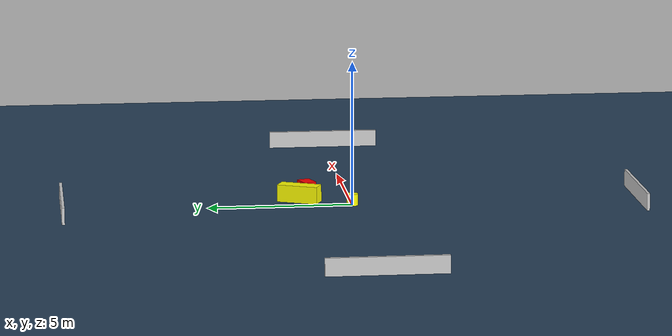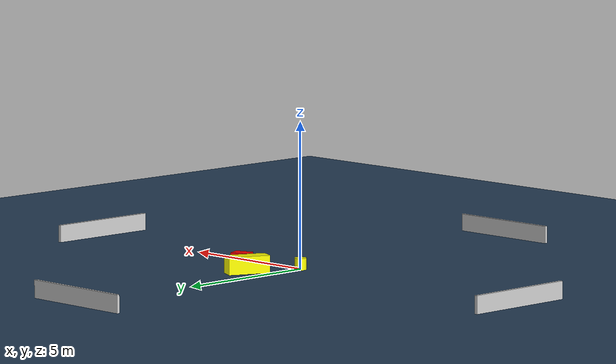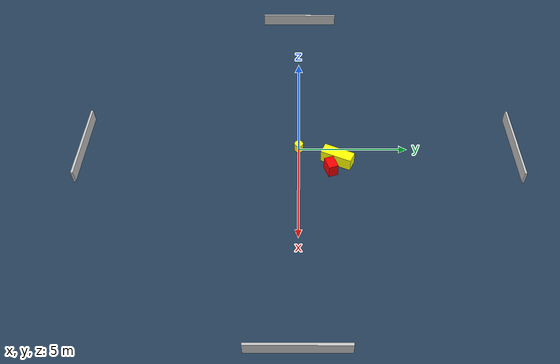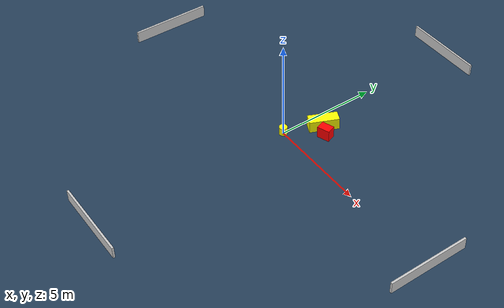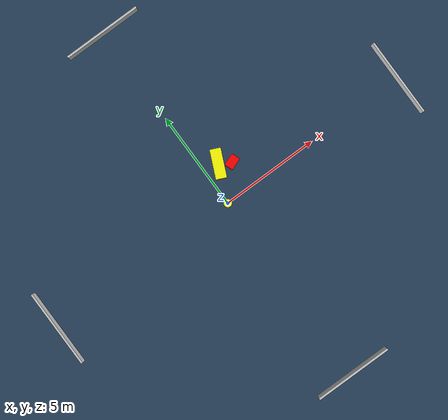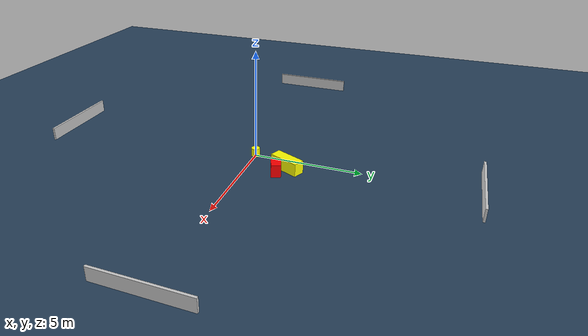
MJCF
<?xml version="1.0" ?>
<mujoco model="generated_environment">
  <option timestep="0.01" integrator="RK4" cone="elliptic"/>
  <default>
    <geom density="1"/>
  </default>
  <asset>
    <texture builtin="gradient" height="3072" name="skybox" rgb1="0.3 0.5 0.7" rgb2="0 0 0" type="skybox" width="512"/>
    <texture builtin="checker" height="300" name="groundplane" rgb1="0.2 0.3 0.4" rgb2="0.1 0.2 0.3" type="2d" width="300"/>
    <material name="groundplane" reflectance="0.2" texrepeat="5 5" texture="groundplane"/>
  </asset>
  <worldbody>
    <light dir="0 0 -1" directional="true" pos="0 0 1.5"/>
    <geom condim="3" friction="0.5 0.005 0.001" material="groundplane" name="floor" pos="0 0 0" size="0 0 0.05" type="plane"/>
    <body name="walls">
      <geom name="wall_1" condim="4" pos="-10.0 0.0 0.3" rgba="0.800000011920929 0.800000011920929 0.800000011920929 1.0" size="0.05 2.0 0.3" type="box"/>
      <geom name="wall_2" condim="4" pos="10.0 0.0 0.3" rgba="0.800000011920929 0.800000011920929 0.800000011920929 1.0" size="0.05 2.0 0.3" type="box"/>
      <geom name="wall_3" condim="4" pos="0.0 -10.0 0.3" rgba="0.800000011920929 0.800000011920929 0.800000011920929 1.0" size="2.0 0.05 0.3" type="box"/>
      <geom name="wall_4" condim="4" pos="0.0 10.0 0.3" rgba="0.800000011920929 0.800000011920929 0.800000011920929 1.0" size="2.0 0.05 0.3" type="box"/>
    </body>
    <body name="robot">
      <joint name="joint_x" type="slide" pos="0 0 0" axis="1 0 0"/>
      <joint name="joint_y" type="slide" pos="0 0 0" axis="0 1 0"/>
      <geom name="robot" type="cylinder" pos="0.0 0.0 0.2" size="0.2 0.2 0.0" mass="5.0" friction="1.0 0.005 0.0001" condim="4" rgba="1.0 1.0 0.0 1.0"/>
    </body>
    <body name="obstacle_1_movable">
      <geom name="obstacle_1_movable" condim="4" pos="0.7441785104558183 1.770972514737667 0.3" euler="0 0 245.702667432138" friction="0.0 0.005 0.001" rgba="1.0 1.0 0.0 1.0" size="0.7199235676380134 0.27029307568976213 0.3" type="box" mass="0.1"/>
      <joint type="free"/>
    </body>
    <body name="obstacle_2_static">
      <geom name="obstacle_2_static" condim="4" pos="1.3289027825948299 1.4518240106201328 0.3" euler="0 0 289.89364330207246" friction="0.0 0.005 0.001" rgba="1.0 0.0 0.0 1.0" size="0.22058007375650532 0.3141391946323994 0.3" type="box"/>
    </body>
  </worldbody>
  <actuator>
    <motor name="actuator_x" joint="joint_x" gear="1" ctrlrange="-1 1"/>
    <motor name="actuator_y" joint="joint_y" gear="1" ctrlrange="-1 1"/>
  </actuator>
</mujoco>
